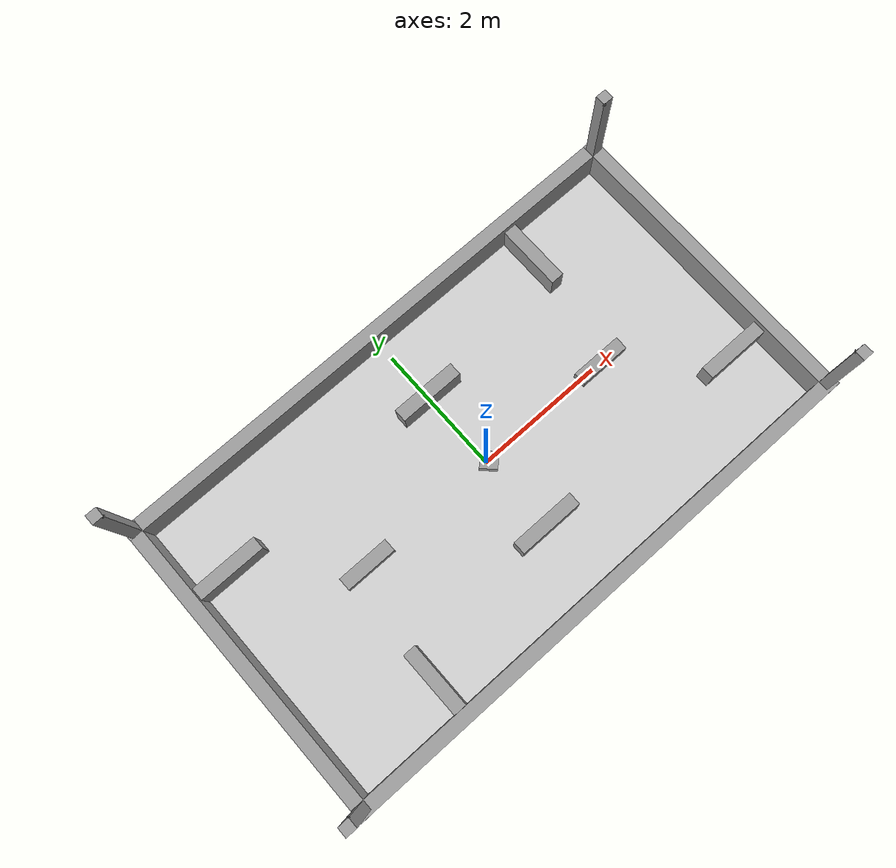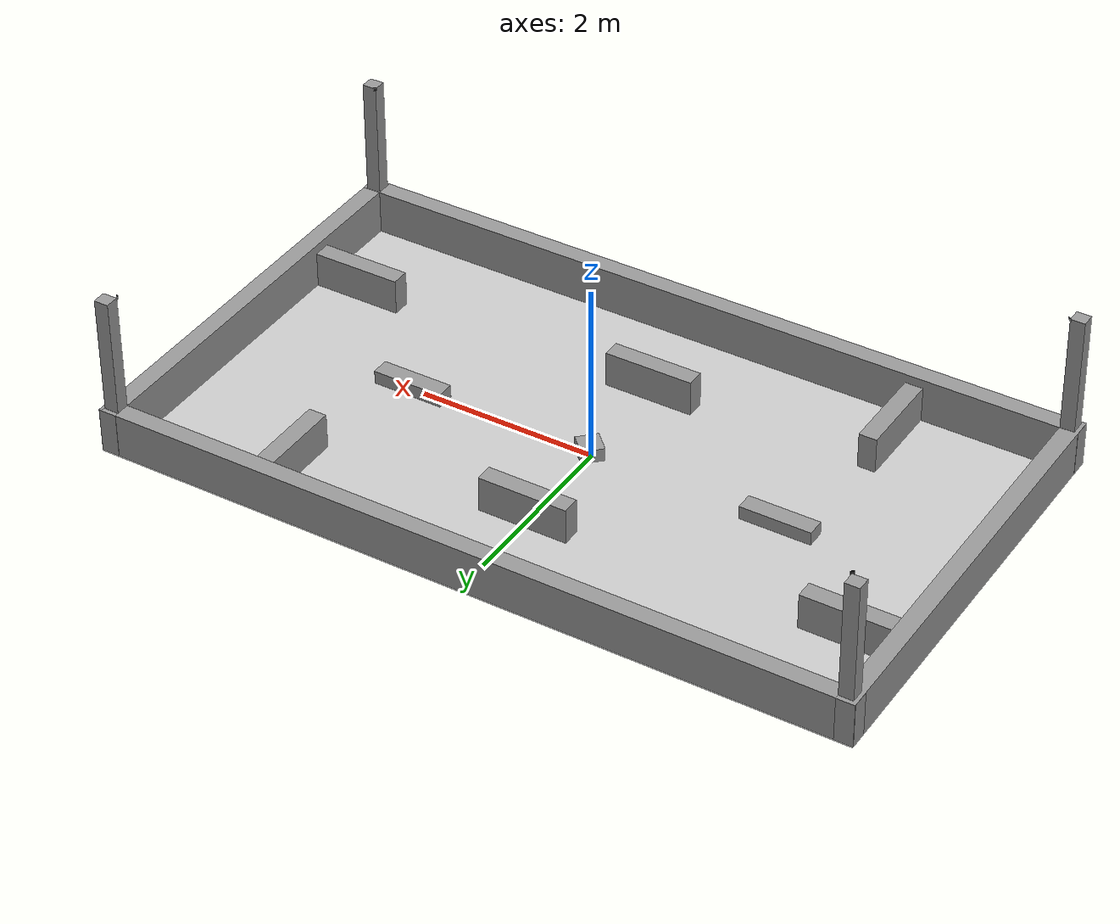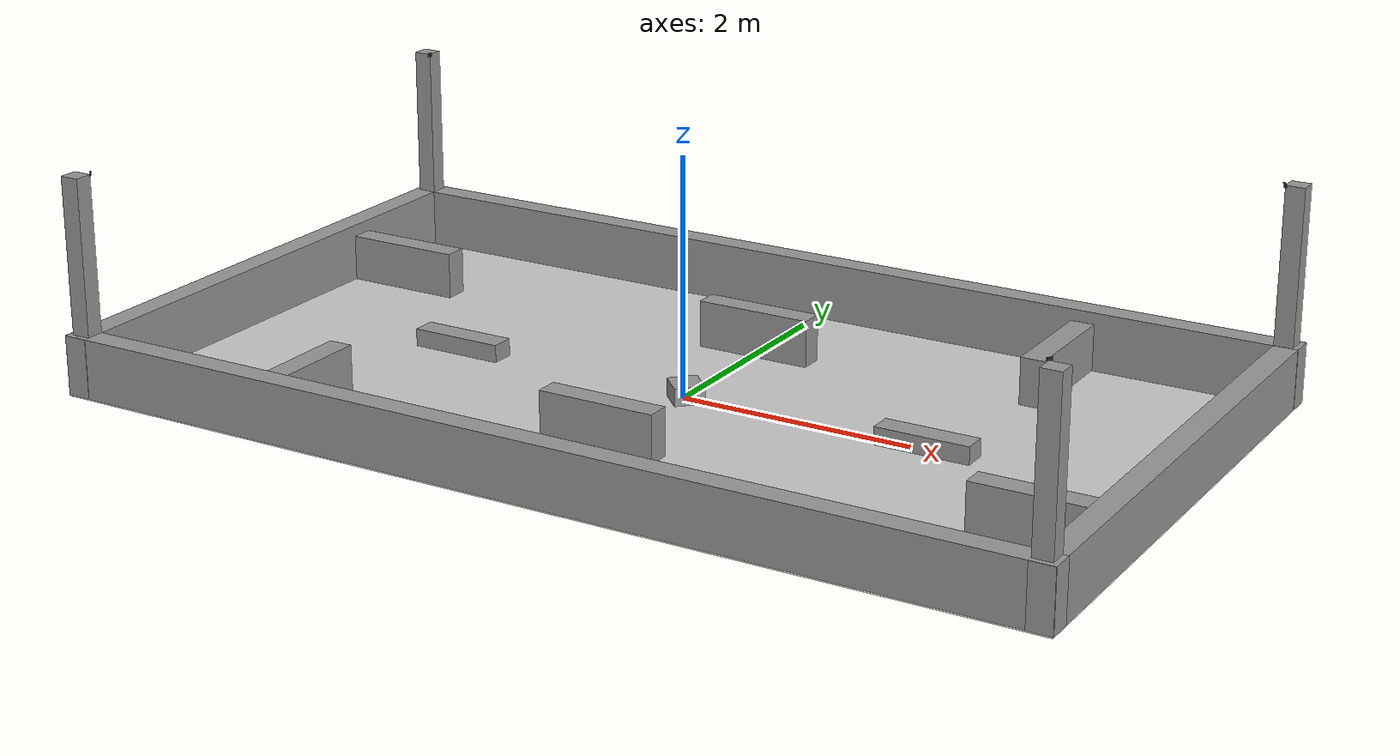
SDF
<sdf version="1.6">
 <world name="default">
  <light name="sun" type="directional">
   <pose>0 0 10 0 -0 0</pose>
   <diffuse>0.8 0.8 0.8 1</diffuse>
   <specular>0.1 0.1 0.1 1</specular>
   <attenuation>
    <range>1000</range>
    <constant>0.9</constant>
    <linear>0.01</linear>
    <quadratic>0.001</quadratic>
   </attenuation>
   <direction>-0.5 0.5 -1</direction>
  </light>
  <gravity>0 0 -9.8</gravity>
  <magnetic_field>6e-06 2.3e-05 -4.2e-05</magnetic_field>
  <atmosphere type="adiabatic"/>
  <physics name="default_physics" default="0" type="ode">
   <max_step_size>0.01</max_step_size>
   <real_time_factor>1</real_time_factor>
   <real_time_update_rate>0</real_time_update_rate>
  </physics>
  <scene><ambient>0.4 0.4 0.4 1</ambient><background>0.7 0.7 0.7 1</background><shadows>1</shadows></scene>
  <spherical_coordinates>
   <surface_model>EARTH_WGS84</surface_model>
   <latitude_deg>0</latitude_deg>
   <longitude_deg>0</longitude_deg>
   <elevation>0</elevation>
   <heading_deg>0</heading_deg>
  </spherical_coordinates>
  <model name="wall">
   <pose frame="world">0.0 0.0 0 0 -0 0</pose>
   <link name="Wall_100">
    <collision name="Wall_100_Collision">
     <geometry><box><size>0.259899 0.25 0.15</size></box></geometry>
     <pose>0 0 0.2 0 -0 0</pose>
    </collision>
    <visual name="Wall_100_Visual">
     <pose>0 0 0.2 0 -0 0</pose>
     <geometry><box><size>0.259899 0.25 0.15</size></box></geometry>
     <material>
      <script><uri>file://media/materials/scripts/gazebo.material</uri><name>Gazebo/Grey</name></script>
      <ambient>1 1 1 1</ambient>
     </material>
    </visual>
    <pose>0.030183 -0.017942 -0.125 0 0 -0.785398</pose>
   </link>
   <link name="Wall_45">
    <collision name="Wall_45_Collision">
     <geometry><box><size>8.485 0.2 0.5</size></box></geometry>
     <pose>0 0 0.25 0 -0 0</pose>
    </collision>
    <visual name="Wall_45_Visual">
     <pose>0 0 0.25 0 -0 0</pose>
     <geometry><box><size>8.485 0.2 0.5</size></box></geometry>
     <material>
      <script><uri>file://media/materials/scripts/gazebo.material</uri><name>Gazebo/Grey</name></script>
      <ambient>1 1 1 1</ambient>
     </material>
    </visual>
    <pose>0 2.340000 0 0 -0 1.5e-05</pose>
   </link>
   <link name="Wall_54">
    <collision name="Wall_54_Collision">
     <geometry><box><size>4.885 0.2 0.5</size></box></geometry>
     <pose>0 0 0.25 0 -0 0</pose>
    </collision>
    <visual name="Wall_54_Visual">
     <pose>0 0 0.25 0 -0 0</pose>
     <geometry><box><size>4.885 0.2 0.5</size></box></geometry>
     <material>
      <script><uri>file://media/materials/scripts/gazebo.material</uri><name>Gazebo/Grey</name></script>
      <ambient>1 1 1 1</ambient>
     </material>
    </visual>
    <pose>4.140000 0.000000 0 0 0 -1.5708</pose>
   </link>
   <link name="Wall_56">
    <collision name="Wall_56_Collision">
     <geometry><box><size>8.485 0.2 0.5</size></box></geometry>
     <pose>0 0 0.25 0 -0 0</pose>
    </collision>
    <visual name="Wall_56_Visual">
     <pose>0 0 0.25 0 -0 0</pose>
     <geometry><box><size>8.485 0.2 0.5</size></box></geometry>
     <material>
      <script><uri>file://media/materials/scripts/gazebo.material</uri><name>Gazebo/Grey</name></script>
      <ambient>1 1 1 1</ambient>
     </material>
    </visual>
    <pose>0 -2.340000 0 0 0 -3.14158</pose>
   </link>
   <link name="Wall_58">
    <collision name="Wall_58_Collision">
     <geometry><box><size>4.885 0.2 0.5</size></box></geometry>
     <pose>0 0 0.25 0 -0 0</pose>
    </collision>
    <visual name="Wall_58_Visual">
     <pose>0 0 0.25 0 -0 0</pose>
     <geometry><box><size>4.885 0.2 0.5</size></box></geometry>
     <material>
      <script><uri>file://media/materials/scripts/gazebo.material</uri><name>Gazebo/Grey</name></script>
      <ambient>1 1 1 1</ambient>
     </material>
    </visual>
    <pose>-4.140000 -0.000000 0 0 0 -1.5708</pose>
   </link>
   <link name="Wall_74">
    <collision name="Wall_74_Collision">
     <geometry><box><size>1.05 0.2 0.4</size></box></geometry>
     <pose>0 0 0.2 0 -0 0</pose>
    </collision>
    <visual name="Wall_74_Visual">
     <pose>0 0 0.2 0 -0 0</pose>
     <geometry><box><size>1.05 0.2 0.4</size></box></geometry>
     <material>
      <script><uri>file://media/materials/scripts/gazebo.material</uri><name>Gazebo/Grey</name></script>
      <ambient>1 1 1 1</ambient>
     </material>
    </visual>
    <pose>-3.54000 1.14000 0 0 -0 0</pose>
   </link>
   <link name="Wall_76">
    <collision name="Wall_76_Collision">
     <geometry><box><size>1 0.2 0.4</size></box></geometry>
     <pose>0 0 0.2 0 -0 0</pose>
    </collision>
    <visual name="Wall_76_Visual">
     <pose>0 0 0.2 0 -0 0</pose>
     <geometry><box><size>1 0.2 0.4</size></box></geometry>
     <material>
      <script><uri>file://media/materials/scripts/gazebo.material</uri><name>Gazebo/Grey</name></script>
      <ambient>1 1 1 1</ambient>
     </material>
    </visual>
    <pose>-2.44000 -1.74000 0 0 -0 1.5708</pose>
   </link>
   <link name="Wall_78">
    <collision name="Wall_78_Collision">
     <geometry><box><size>1 0.2 0.4</size></box></geometry>
     <pose>0 0 0.2 0 -0 0</pose>
    </collision>
    <visual name="Wall_78_Visual">
     <pose>0 0 0.2 0 -0 0</pose>
     <geometry><box><size>1 0.2 0.4</size></box></geometry>
     <material>
      <script><uri>file://media/materials/scripts/gazebo.material</uri><name>Gazebo/Grey</name></script>
      <ambient>1 1 1 1</ambient>
     </material>
    </visual>
    <pose>3.540000 -1.140000 0 0 -0 3.14159</pose>
   </link>
   <link name="Wall_80">
    <collision name="Wall_80_Collision">
     <geometry><box><size>1 0.2 0.4</size></box></geometry>
     <pose>0 0 0.2 0 -0 0</pose>
    </collision>
    <visual name="Wall_80_Visual">
     <pose>0 0 0.2 0 -0 0</pose>
     <geometry><box><size>1 0.2 0.4</size></box></geometry>
     <material>
      <script><uri>file://media/materials/scripts/gazebo.material</uri><name>Gazebo/Grey</name></script>
      <ambient>1 1 1 1</ambient>
     </material>
    </visual>
    <pose>2.440000 1.740000 0 0 -0 1.5708</pose>
   </link>
   <link name="Wall_82">
    <collision name="Wall_82_Collision">
     <geometry><box><size>1 0.2 0.4</size></box></geometry>
     <pose>0 0 0.2 0 -0 0</pose>
    </collision>
    <visual name="Wall_82_Visual">
     <pose>0 0 0.2 0 -0 0</pose>
     <geometry><box><size>1 0.2 0.4</size></box></geometry>
     <material>
      <script><uri>file://media/materials/scripts/gazebo.material</uri><name>Gazebo/Grey</name></script>
      <ambient>1 1 1 1</ambient>
     </material>
    </visual>
    <pose>0.000000 1.205000 0 0 -0 0</pose>
   </link>
   <link name="Wall_84">
    <collision name="Wall_84_Collision">
     <geometry><box><size>1 0.2 0.4</size></box></geometry>
     <pose>0 0 0.2 0 -0 0</pose>
    </collision>
    <visual name="Wall_84_Visual">
     <pose>0 0 0.2 0 -0 0</pose>
     <geometry><box><size>1 0.2 0.4</size></box></geometry>
     <material>
      <script><uri>file://media/materials/scripts/gazebo.material</uri><name>Gazebo/Grey</name></script>
      <ambient>1 1 1 1</ambient>
     </material>
    </visual>
    <pose>0.000000 -1.205000 0 0 -0 0</pose>
   </link>
   <link name="Wall_86">
    <collision name="Wall_86_Collision">
     <geometry><box><size>0.8 0.2 0.15</size></box></geometry>
     <pose>0 0 0.2 0 -0 0</pose>
    </collision>
    <visual name="Wall_86_Visual">
     <pose>0 0 0.2 0 -0 0</pose>
     <geometry><box><size>0.8 0.2 0.15</size></box></geometry>
     <material>
      <script><uri>file://media/materials/scripts/gazebo.material</uri><name>Gazebo/Grey</name></script>
      <ambient>1 1 1 1</ambient>
     </material>
    </visual>
    <pose>-2.14000 -0.000000 -0.125 0 -0 0</pose>
   </link>
   <link name="Wall_88">
    <collision name="Wall_88_Collision">
     <geometry><box><size>0.8 0.2 0.15</size></box></geometry>
     <pose>0 0 0.2 0 -0 0</pose>
    </collision>
    <visual name="Wall_88_Visual">
     <pose>0 0 0.2 0 -0 0</pose>
     <geometry><box><size>0.8 0.2 0.15</size></box></geometry>
     <material>
      <script><uri>file://media/materials/scripts/gazebo.material</uri><name>Gazebo/Grey</name></script>
      <ambient>1 1 1 1</ambient>
     </material>
    </visual>
    <pose>2.140000 -0.000000 -0.125 0 -0 0</pose>
   </link>
   <static>1</static>
  </model>
  <model name="pole_0">
   <pose frame="world">4.12 2.32 0 0 -0 0</pose>
   <link name="Wall_0">
    <collision name="Wall_0_Collision">
     <geometry><box><size>0.16 0.15 1.808</size></box></geometry>
     <pose>0 0 0.904 0 -0 0</pose>
    </collision>
    <visual name="Wall_0_Visual">
     <pose>0 0 0.904 0 -0 0</pose>
     <geometry><box><size>0.16 0.15 1.808</size></box></geometry>
     <material>
      <script><uri>file://media/materials/scripts/gazebo.material</uri><name>Gazebo/Grey</name></script>
      <ambient>1 1 1 1</ambient>
     </material>
    </visual>
   </link>
   <static>1</static>
  </model>
  <model name="pole_1">
   <pose frame="world">4.12 -2.32 0 0 -0 0</pose>
   <link name="Wall_0">
    <collision name="Wall_0_Collision">
     <geometry><box><size>0.16 0.15 1.808</size></box></geometry>
     <pose>0 0 0.904 0 -0 0</pose>
    </collision>
    <visual name="Wall_0_Visual">
     <pose>0 0 0.904 0 -0 0</pose>
     <geometry><box><size>0.16 0.15 1.808</size></box></geometry>
     <material>
      <script><uri>file://media/materials/scripts/gazebo.material</uri><name>Gazebo/Grey</name></script>
      <ambient>1 1 1 1</ambient>
     </material>
    </visual>
   </link>
   <static>1</static>
  </model>
  <model name="pole_2">
   <pose frame="world">-4.12 -2.32 0 0 -0 0</pose>
   <link name="Wall_0">
    <collision name="Wall_0_Collision">
     <geometry><box><size>0.16 0.15 1.808</size></box></geometry>
     <pose>0 0 0.904 0 -0 0</pose>
    </collision>
    <visual name="Wall_0_Visual">
     <pose>0 0 0.904 0 -0 0</pose>
     <geometry><box><size>0.16 0.15 1.808</size></box></geometry>
     <material>
      <script><uri>file://media/materials/scripts/gazebo.material</uri><name>Gazebo/Grey</name></script>
      <ambient>1 1 1 1</ambient>
     </material>
    </visual>
   </link>
   <static>1</static>
  </model>
  <model name="pole_3">
   <pose frame="world">-4.12 2.32 0 0 -0 0</pose>
   <link name="Wall_0">
    <collision name="Wall_0_Collision">
     <geometry><box><size>0.16 0.15 1.808</size></box></geometry>
     <pose>0 0 0.904 0 -0 0</pose>
    </collision>
    <visual name="Wall_0_Visual">
     <pose>0 0 0.904 0 -0 0</pose>
     <geometry><box><size>0.16 0.15 1.808</size></box></geometry>
     <material>
      <script><uri>file://media/materials/scripts/gazebo.material</uri><name>Gazebo/Grey</name></script>
      <ambient>1 1 1 1</ambient>
     </material>
    </visual>
   </link>
   <static>1</static>
  </model>
  <model name="outpost-camera_0">
   <link name="camera_link">
    <inertial>
     <mass>0.1</mass>
     <inertia><ixx>0.01</ixx><ixy>0</ixy><ixz>0</ixz><iyy>0.01</iyy><iyz>0</iyz><izz>0.01</izz></inertia>
    </inertial>
    <sensor name="camera_node" type="camera">
     <update_rate>30</update_rate>
     <camera name="outpost-camera_0">
      <horizontal_fov>1.39626</horizontal_fov>
      <image><width>1280</width><height>720</height><format>R8G8B8</format></image>
      <clip><near>0.02</near><far>300</far></clip>
      <noise><type>gaussian</type><mean>0</mean><stddev>0.007</stddev></noise>
     </camera>
     <plugin name="gazebo_camera" filename="libgazebo_ros_camera.so">
      <robotNamespace>/outpost_camera</robotNamespace>
      <cameraName>outpost_camera0</cameraName>
      <imageTopicName>image_raw</imageTopicName>
     </plugin>
    </sensor>
    <visual name="camera_link_visual">
     <geometry><box><size>0.01 0.04 0.04</size></box></geometry>
     <material>
      <script><name>Gazebo/Black</name><uri>file://media/materials/scripts/gazebo.material</uri></script>
      <ambient>0 0 0 1</ambient>
      <diffuse>0 0 0 1</diffuse>
      <specular>0.1 0.1 0.1 1</specular>
      <emissive>0 0 0 1</emissive>
     </material>
    </visual>
    <collision name="camera_link_collision">
     <geometry><box><size>0.01 0.04 0.04</size></box></geometry>
     <surface>
      <friction>
       <ode><mu>1</mu><mu2>1</mu2><fdir1>0 0 0</fdir1><slip1>0</slip1><slip2>0</slip2></ode>
       <torsional>
        <coefficient>1</coefficient>
        <patch_radius>0</patch_radius>
        <surface_radius>0</surface_radius>
        <use_patch_radius>1</use_patch_radius>
        <ode><slip>0</slip></ode>
       </torsional>
      </friction>
      <bounce><restitution_coefficient>0</restitution_coefficient><threshold>1e+06</threshold></bounce>
      <contact>
       <collide_without_contact>0</collide_without_contact>
       <collide_without_contact_bitmask>1</collide_without_contact_bitmask>
       <collide_bitmask>1</collide_bitmask>
       <ode>
        <soft_cfm>0</soft_cfm>
        <soft_erp>0.2</soft_erp>
        <kp>1e+13</kp>
        <kd>1</kd>
        <max_vel>0.01</max_vel>
        <min_depth>0</min_depth>
       </ode>
       <bullet>
        <split_impulse>1</split_impulse>
        <split_impulse_penetration_threshold>-0.01</split_impulse_penetration_threshold>
        <soft_cfm>0</soft_cfm>
        <soft_erp>0.2</soft_erp>
        <kp>1e+13</kp>
        <kd>1</kd>
       </bullet>
      </contact>
     </surface>
    </collision>
   </link>
   <static>1</static>
   <pose frame="world">4.04 2.24 1.808 0 0.25 -2.355</pose>
  </model>
  <model name="outpost-camera_1">
   <link name="camera_link">
    <pose frame="world">0 0 -0 0 -0 0</pose>
    <inertial>
     <mass>0.1</mass>
     <inertia><ixx>0.01</ixx><ixy>0</ixy><ixz>0</ixz><iyy>0.01</iyy><iyz>0</iyz><izz>0.01</izz></inertia>
    </inertial>
    <sensor name="camera_node" type="camera">
     <update_rate>30</update_rate>
     <camera name="outpost-camera_1">
      <horizontal_fov>1.39626</horizontal_fov>
      <image><width>1280</width><height>720</height><format>R8G8B8</format></image>
      <clip><near>0.02</near><far>300</far></clip>
      <noise><type>gaussian</type><mean>0</mean><stddev>0.007</stddev></noise>
     </camera>
     <plugin name="gazebo_camera" filename="libgazebo_ros_camera.so">
      <robotNamespace>/outpost_camera</robotNamespace>
      <cameraName>outpost_camera1</cameraName>
      <imageTopicName>image_raw</imageTopicName>
     </plugin>
    </sensor>
    <visual name="camera_link_visual">
     <geometry><box><size>0.01 0.04 0.04</size></box></geometry>
     <material>
      <script><name>Gazebo/Black</name><uri>file://media/materials/scripts/gazebo.material</uri></script>
      <ambient>0 0 0 1</ambient>
      <diffuse>0 0 0 1</diffuse>
      <specular>0.1 0.1 0.1 1</specular>
      <emissive>0 0 0 1</emissive>
     </material>
    </visual>
    <collision name="camera_link_collision">
     <geometry><box><size>0.01 0.04 0.04</size></box></geometry>
     <surface>
      <friction>
       <ode><mu>1</mu><mu2>1</mu2><fdir1>0 0 0</fdir1><slip1>0</slip1><slip2>0</slip2></ode>
       <torsional>
        <coefficient>1</coefficient>
        <patch_radius>0</patch_radius>
        <surface_radius>0</surface_radius>
        <use_patch_radius>1</use_patch_radius>
        <ode><slip>0</slip></ode>
       </torsional>
      </friction>
      <bounce><restitution_coefficient>0</restitution_coefficient><threshold>1e+06</threshold></bounce>
      <contact>
       <collide_without_contact>0</collide_without_contact>
       <collide_without_contact_bitmask>1</collide_without_contact_bitmask>
       <collide_bitmask>1</collide_bitmask>
       <ode>
        <soft_cfm>0</soft_cfm>
        <soft_erp>0.2</soft_erp>
        <kp>1e+13</kp>
        <kd>1</kd>
        <max_vel>0.01</max_vel>
        <min_depth>0</min_depth>
       </ode>
       <bullet>
        <split_impulse>1</split_impulse>
        <split_impulse_penetration_threshold>-0.01</split_impulse_penetration_threshold>
        <soft_cfm>0</soft_cfm>
        <soft_erp>0.2</soft_erp>
        <kp>1e+13</kp>
        <kd>1</kd>
       </bullet>
      </contact>
     </surface>
    </collision>
   </link>
   <static>1</static>
   <pose frame="world">4.04 -2.24 1.808 0 0.25 2.355</pose>
  </model>
  <model name="outpost-camera_2">
   <link name="camera_link">
    <inertial>
     <mass>0.1</mass>
     <inertia><ixx>0.01</ixx><ixy>0</ixy><ixz>0</ixz><iyy>0.01</iyy><iyz>0</iyz><izz>0.01</izz></inertia>
    </inertial>
    <sensor name="camera_node" type="camera">
     <update_rate>30</update_rate>
     <camera name="outpost-camera_2">
      <horizontal_fov>1.39626</horizontal_fov>
      <image><width>1280</width><height>720</height><format>R8G8B8</format></image>
      <clip><near>0.02</near><far>300</far></clip>
      <noise><type>gaussian</type><mean>0</mean><stddev>0.007</stddev></noise>
     </camera>
     <plugin name="gazebo_camera" filename="libgazebo_ros_camera.so">
      <robotNamespace>/outpost_camera</robotNamespace>
      <cameraName>outpost_camera2</cameraName>
      <imageTopicName>image_raw</imageTopicName>
     </plugin>
    </sensor>
    <visual name="camera_link_visual">
     <geometry><box><size>0.01 0.04 0.04</size></box></geometry>
     <material>
      <script><name>Gazebo/Black</name><uri>file://media/materials/scripts/gazebo.material</uri></script>
      <ambient>0 0 0 1</ambient>
      <diffuse>0 0 0 1</diffuse>
      <specular>0.1 0.1 0.1 1</specular>
      <emissive>0 0 0 1</emissive>
     </material>
    </visual>
    <collision name="camera_link_collision">
     <geometry><box><size>0.01 0.04 0.04</size></box></geometry>
     <surface>
      <friction>
       <ode><mu>1</mu><mu2>1</mu2><fdir1>0 0 0</fdir1><slip1>0</slip1><slip2>0</slip2></ode>
       <torsional>
        <coefficient>1</coefficient>
        <patch_radius>0</patch_radius>
        <surface_radius>0</surface_radius>
        <use_patch_radius>1</use_patch_radius>
        <ode><slip>0</slip></ode>
       </torsional>
      </friction>
      <bounce><restitution_coefficient>0</restitution_coefficient><threshold>1e+06</threshold></bounce>
      <contact>
       <collide_without_contact>0</collide_without_contact>
       <collide_without_contact_bitmask>1</collide_without_contact_bitmask>
       <collide_bitmask>1</collide_bitmask>
       <ode>
        <soft_cfm>0</soft_cfm>
        <soft_erp>0.2</soft_erp>
        <kp>1e+13</kp>
        <kd>1</kd>
        <max_vel>0.01</max_vel>
        <min_depth>0</min_depth>
       </ode>
       <bullet>
        <split_impulse>1</split_impulse>
        <split_impulse_penetration_threshold>-0.01</split_impulse_penetration_threshold>
        <soft_cfm>0</soft_cfm>
        <soft_erp>0.2</soft_erp>
        <kp>1e+13</kp>
        <kd>1</kd>
       </bullet>
      </contact>
     </surface>
    </collision>
   </link>
   <static>1</static>
   <pose frame="world">-4.04 -2.24 1.808 0 0.25 0.785</pose>
  </model>
  <model name="outpost-camera_3">
   <link name="camera_link">
    <inertial>
     <mass>0.1</mass>
     <inertia><ixx>0.01</ixx><ixy>0</ixy><ixz>0</ixz><iyy>0.01</iyy><iyz>0</iyz><izz>0.01</izz></inertia>
    </inertial>
    <sensor name="camera_node" type="camera">
     <update_rate>30</update_rate>
     <camera name="camera-camera_3">
      <horizontal_fov>1.39626</horizontal_fov>
      <image><width>1280</width><height>720</height><format>R8G8B8</format></image>
      <clip><near>0.02</near><far>300</far></clip>
      <noise><type>gaussian</type><mean>0</mean><stddev>0.007</stddev></noise>
     </camera>
     <plugin name="gazebo_camera" filename="libgazebo_ros_camera.so">
      <robotNamespace>/outpost_camera</robotNamespace>
      <cameraName>outpost_camera3</cameraName>
      <imageTopicName>image_raw</imageTopicName>
     </plugin>
    </sensor>
    <visual name="camera_link_visual">
     <geometry><box><size>0.01 0.04 0.04</size></box></geometry>
     <material>
      <script><name>Gazebo/Black</name><uri>file://media/materials/scripts/gazebo.material</uri></script>
      <ambient>0 0 0 1</ambient>
      <diffuse>0 0 0 1</diffuse>
      <specular>0.1 0.1 0.1 1</specular>
      <emissive>0 0 0 1</emissive>
     </material>
    </visual>
    <collision name="camera_link_collision">
     <geometry><box><size>0.01 0.04 0.04</size></box></geometry>
     <surface>
      <friction>
       <ode><mu>1</mu><mu2>1</mu2><fdir1>0 0 0</fdir1><slip1>0</slip1><slip2>0</slip2></ode>
       <torsional>
        <coefficient>1</coefficient>
        <patch_radius>0</patch_radius>
        <surface_radius>0</surface_radius>
        <use_patch_radius>1</use_patch_radius>
        <ode><slip>0</slip></ode>
       </torsional>
      </friction>
      <bounce><restitution_coefficient>0</restitution_coefficient><threshold>1e+06</threshold></bounce>
      <contact>
       <collide_without_contact>0</collide_without_contact>
       <collide_without_contact_bitmask>1</collide_without_contact_bitmask>
       <collide_bitmask>1</collide_bitmask>
       <ode>
        <soft_cfm>0</soft_cfm>
        <soft_erp>0.2</soft_erp>
        <kp>1e+13</kp>
        <kd>1</kd>
        <max_vel>0.01</max_vel>
        <min_depth>0</min_depth>
       </ode>
       <bullet>
        <split_impulse>1</split_impulse>
        <split_impulse_penetration_threshold>-0.01</split_impulse_penetration_threshold>
        <soft_cfm>0</soft_cfm>
        <soft_erp>0.2</soft_erp>
        <kp>1e+13</kp>
        <kd>1</kd>
       </bullet>
      </contact>
     </surface>
    </collision>
   </link>
   <static>1</static>
   <pose frame="world">-4.04 2.24 1.808 0 0.25 -0.785</pose>
  </model>
  <model name="icra_ground_plane">
   <static>1</static>
   <link name="link">
    <collision name="collision">
     <geometry><plane><normal>0 0 1</normal><size>8.48 4.88</size></plane></geometry>
     <surface><friction><ode><mu>100</mu><mu2>50</mu2></ode></friction></surface>
    </collision>
    <visual name="visual">
     <cast_shadows>0</cast_shadows>
     <geometry><plane><normal>0 0 1</normal><size>8.48 4.88</size></plane></geometry>
     <material>
      <script>
       <uri>model://icra_ground_plane/materials/scripts/</uri>
       <uri>model://icra_ground_plane/materials/textures/</uri>
       <name>icra_ground_plane/Image</name>
      </script>
     </material>
    </visual>
   </link>
  </model>
 </world>
</sdf>
